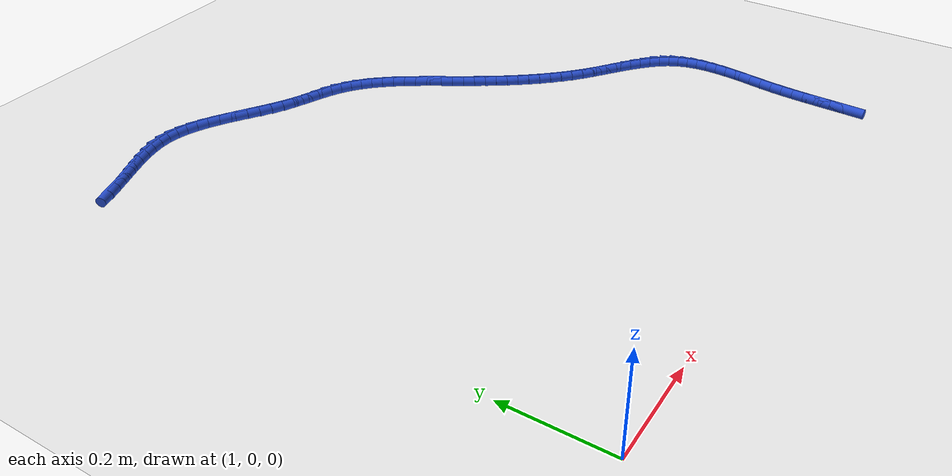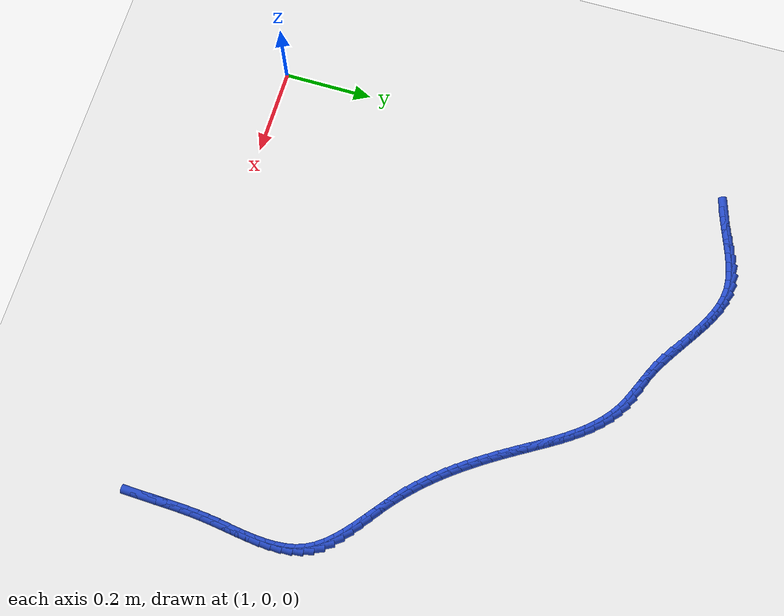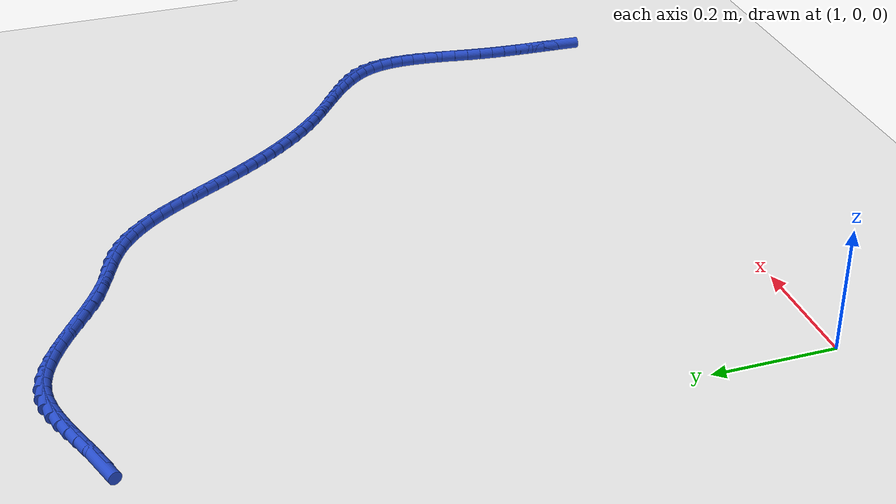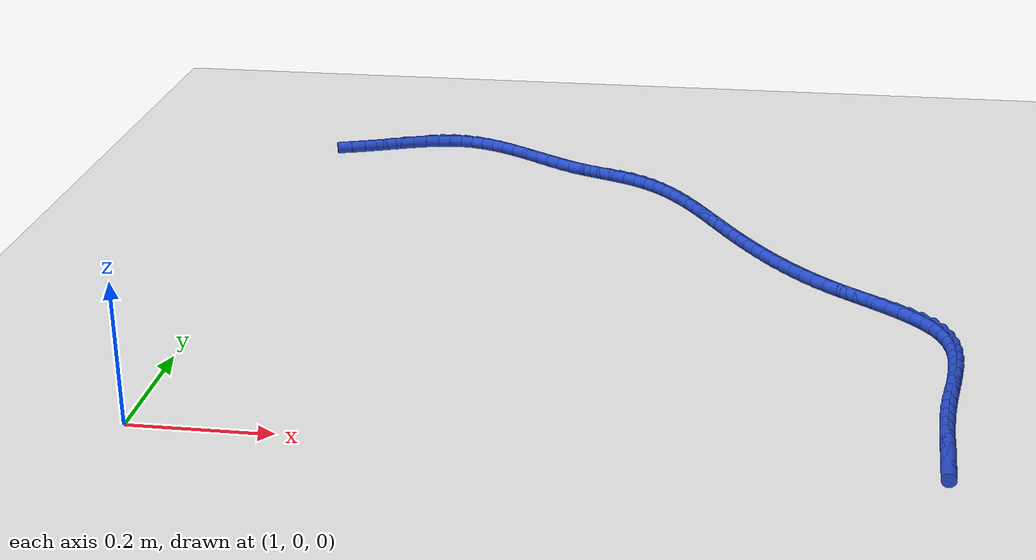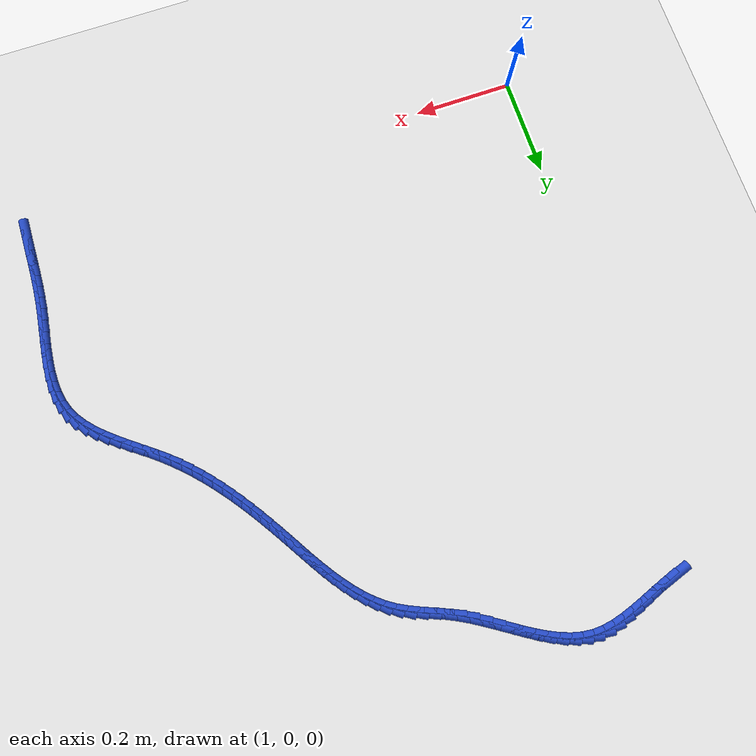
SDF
<sdf version="1.6">
 <world name="default">
  <model name="ground_plane">
   <static>1</static>
   <link name="link">
    <collision name="collision">
     <geometry><plane><normal>0 0 1</normal><size>100 100</size></plane></geometry>
     <surface><friction><ode><mu>100</mu><mu2>50</mu2></ode></friction></surface>
    </collision>
    <visual name="visual">
     <cast_shadows>0</cast_shadows>
     <geometry><plane><normal>0 0 1</normal><size>100 100</size></plane></geometry>
     <material>
      <script><uri>file://media/materials/scripts/gazebo.material</uri><name>Gazebo/WhiteGlow</name></script>
     </material>
    </visual>
   </link>
  </model>
  <model name="line">
   <link name="link_72">
    <pose>1.0673930704174264 1.0480091468862467 0.01 0 1.57 0.32543432662351807</pose>
    <collision name="collision">
     <geometry><cylinder><radius>0.01</radius><length>0.08</length></cylinder></geometry>
    </collision>
    <visual name="visual">
     <material>
      <script><name>Gazebo/Blue</name><uri>file://media/materials/scripts/gazebo.material</uri></script>
     </material>
     <geometry><cylinder><radius>0.01</radius><length>0.08</length></cylinder></geometry>
    </visual>
   </link>
   <link name="link_73">
    <pose>1.090062836324641 1.0556586391920324 0.01 0 1.57 0.3547111861317352</pose>
    <collision name="collision">
     <geometry><cylinder><radius>0.01</radius><length>0.08</length></cylinder></geometry>
    </collision>
    <visual name="visual">
     <material>
      <script><name>Gazebo/Blue</name><uri>file://media/materials/scripts/gazebo.material</uri></script>
     </material>
     <geometry><cylinder><radius>0.01</radius><length>0.08</length></cylinder></geometry>
    </visual>
   </link>
   <link name="link_74">
    <pose>1.112594905208778 1.064003991690307 0.01 0 1.57 0.36232805442717286</pose>
    <collision name="collision">
     <geometry><cylinder><radius>0.01</radius><length>0.08</length></cylinder></geometry>
    </collision>
    <visual name="visual">
     <material>
      <script><name>Gazebo/Blue</name><uri>file://media/materials/scripts/gazebo.material</uri></script>
     </material>
     <geometry><cylinder><radius>0.01</radius><length>0.08</length></cylinder></geometry>
    </visual>
   </link>
   <link name="link_75">
    <pose>1.1349659699733838 1.0724840363730466 0.01 0 1.57 0.3481999768852015</pose>
    <collision name="collision">
     <geometry><cylinder><radius>0.01</radius><length>0.08</length></cylinder></geometry>
    </collision>
    <visual name="visual">
     <material>
      <script><name>Gazebo/Blue</name><uri>file://media/materials/scripts/gazebo.material</uri></script>
     </material>
     <geometry><cylinder><radius>0.01</radius><length>0.08</length></cylinder></geometry>
    </visual>
   </link>
   <link name="link_76">
    <pose>1.1571527235220058 1.0805376052322297 0.01 0 1.57 0.31104788766767644</pose>
    <collision name="collision">
     <geometry><cylinder><radius>0.01</radius><length>0.08</length></cylinder></geometry>
    </collision>
    <visual name="visual">
     <material>
      <script><name>Gazebo/Blue</name><uri>file://media/materials/scripts/gazebo.material</uri></script>
     </material>
     <geometry><cylinder><radius>0.01</radius><length>0.08</length></cylinder></geometry>
    </visual>
   </link>
   <link name="link_77">
    <pose>1.1791318587581918 1.0876035302598335 0.01 0 1.57 0.24844036251018556</pose>
    <collision name="collision">
     <geometry><cylinder><radius>0.01</radius><length>0.08</length></cylinder></geometry>
    </collision>
    <visual name="visual">
     <material>
      <script><name>Gazebo/Blue</name><uri>file://media/materials/scripts/gazebo.material</uri></script>
     </material>
     <geometry><cylinder><radius>0.01</radius><length>0.08</length></cylinder></geometry>
    </visual>
   </link>
   <link name="link_78">
    <pose>1.2008800685854892 1.0931206434478347 0.01 0 1.57 0.15720769936185053</pose>
    <collision name="collision">
     <geometry><cylinder><radius>0.01</radius><length>0.08</length></cylinder></geometry>
    </collision>
    <visual name="visual">
     <material>
      <script><name>Gazebo/Blue</name><uri>file://media/materials/scripts/gazebo.material</uri></script>
     </material>
     <geometry><cylinder><radius>0.01</radius><length>0.08</length></cylinder></geometry>
    </visual>
   </link>
   <link name="link_79">
    <pose>1.2223740459074453 1.0965277767882111 0.01 0 1.57 0.034675495022608346</pose>
    <collision name="collision">
     <geometry><cylinder><radius>0.01</radius><length>0.08</length></cylinder></geometry>
    </collision>
    <visual name="visual">
     <material>
      <script><name>Gazebo/Blue</name><uri>file://media/materials/scripts/gazebo.material</uri></script>
     </material>
     <geometry><cylinder><radius>0.01</radius><length>0.08</length></cylinder></geometry>
    </visual>
   </link>
   <link name="link_80">
    <pose>1.2435904836276075 1.0972637622729402 0.01 0 1.57 -0.11167362612965273</pose>
    <collision name="collision">
     <geometry><cylinder><radius>0.01</radius><length>0.08</length></cylinder></geometry>
    </collision>
    <visual name="visual">
     <material>
      <script><name>Gazebo/Blue</name><uri>file://media/materials/scripts/gazebo.material</uri></script>
     </material>
     <geometry><cylinder><radius>0.01</radius><length>0.08</length></cylinder></geometry>
    </visual>
   </link>
   <link name="link_81">
    <pose>1.2645185084058563 1.0949168897895283 0.01 0 1.57 -0.245567502443348</pose>
    <collision name="collision">
     <geometry><cylinder><radius>0.01</radius><length>0.08</length></cylinder></geometry>
    </collision>
    <visual name="visual">
     <material>
      <script><name>Gazebo/Blue</name><uri>file://media/materials/scripts/gazebo.material</uri></script>
     </material>
     <geometry><cylinder><radius>0.01</radius><length>0.08</length></cylinder></geometry>
    </visual>
   </link>
   <link name="link_82">
    <pose>1.2852019572009896 1.0897330852544183 0.01 0 1.57 -0.3548010673460312</pose>
    <collision name="collision">
     <geometry><cylinder><radius>0.01</radius><length>0.08</length></cylinder></geometry>
    </collision>
    <visual name="visual">
     <material>
      <script><name>Gazebo/Blue</name><uri>file://media/materials/scripts/gazebo.material</uri></script>
     </material>
     <geometry><cylinder><radius>0.01</radius><length>0.08</length></cylinder></geometry>
    </visual>
   </link>
   <link name="link_83">
    <pose>1.3056997103226204 1.0821391006750902 0.01 0 1.57 -0.4394841724316454</pose>
    <collision name="collision">
     <geometry><cylinder><radius>0.01</radius><length>0.08</length></cylinder></geometry>
    </collision>
    <visual name="visual">
     <material>
      <script><name>Gazebo/Blue</name><uri>file://media/materials/scripts/gazebo.material</uri></script>
     </material>
     <geometry><cylinder><radius>0.01</radius><length>0.08</length></cylinder></geometry>
    </visual>
   </link>
   <link name="link_84">
    <pose>1.3260706485192881 1.0725616933350557 0.01 0 1.57 -0.5016103924878325</pose>
    <collision name="collision">
     <geometry><cylinder><radius>0.01</radius><length>0.08</length></cylinder></geometry>
    </collision>
    <visual name="visual">
     <material>
      <script><name>Gazebo/Blue</name><uri>file://media/materials/scripts/gazebo.material</uri></script>
     </material>
     <geometry><cylinder><radius>0.01</radius><length>0.08</length></cylinder></geometry>
    </visual>
   </link>
   <link name="link_85">
    <pose>1.3463736525395318 1.061427620517826 0.01 0 1.57 -0.5435877806002308</pose>
    <collision name="collision">
     <geometry><cylinder><radius>0.01</radius><length>0.08</length></cylinder></geometry>
    </collision>
    <visual name="visual">
     <material>
      <script><name>Gazebo/Blue</name><uri>file://media/materials/scripts/gazebo.material</uri></script>
     </material>
     <geometry><cylinder><radius>0.01</radius><length>0.08</length></cylinder></geometry>
    </visual>
   </link>
   <link name="link_86">
    <pose>1.3666676031318905 1.0491636395069126 0.01 0 1.57 -0.5674667937651484</pose>
    <collision name="collision">
     <geometry><cylinder><radius>0.01</radius><length>0.08</length></cylinder></geometry>
    </collision>
    <visual name="visual">
     <material>
      <script><name>Gazebo/Blue</name><uri>file://media/materials/scripts/gazebo.material</uri></script>
     </material>
     <geometry><cylinder><radius>0.01</radius><length>0.08</length></cylinder></geometry>
    </visual>
   </link>
   <link name="link_87">
    <pose>1.3870113810449038 1.0361965075858264 0.01 0 1.57 -0.5746343762718018</pose>
    <collision name="collision">
     <geometry><cylinder><radius>0.01</radius><length>0.08</length></cylinder></geometry>
    </collision>
    <visual name="visual">
     <material>
      <script><name>Gazebo/Blue</name><uri>file://media/materials/scripts/gazebo.material</uri></script>
     </material>
     <geometry><cylinder><radius>0.01</radius><length>0.08</length></cylinder></geometry>
    </visual>
   </link>
   <link name="link_88">
    <pose>1.4074638670271098 1.0229529820380792 0.01 0 1.57 -0.565737790495652</pose>
    <collision name="collision">
     <geometry><cylinder><radius>0.01</radius><length>0.08</length></cylinder></geometry>
    </collision>
    <visual name="visual">
     <material>
      <script><name>Gazebo/Blue</name><uri>file://media/materials/scripts/gazebo.material</uri></script>
     </material>
     <geometry><cylinder><radius>0.01</radius><length>0.08</length></cylinder></geometry>
    </visual>
   </link>
   <link name="link_89">
    <pose>1.4280839418270486 1.0098598201471822 0.01 0 1.57 -0.540705657776783</pose>
    <collision name="collision">
     <geometry><cylinder><radius>0.01</radius><length>0.08</length></cylinder></geometry>
    </collision>
    <visual name="visual">
     <material>
      <script><name>Gazebo/Blue</name><uri>file://media/materials/scripts/gazebo.material</uri></script>
     </material>
     <geometry><cylinder><radius>0.01</radius><length>0.08</length></cylinder></geometry>
    </visual>
   </link>
   <link name="link_90">
    <pose>1.4489304861932584 0.9973437791966466 0.01 0 1.57 -0.49882411593835035</pose>
    <collision name="collision">
     <geometry><cylinder><radius>0.01</radius><length>0.08</length></cylinder></geometry>
    </collision>
    <visual name="visual">
     <material>
      <script><name>Gazebo/Blue</name><uri>file://media/materials/scripts/gazebo.material</uri></script>
     </material>
     <geometry><cylinder><radius>0.01</radius><length>0.08</length></cylinder></geometry>
    </visual>
   </link>
   <link name="link_91">
    <pose>1.4700623808742792 0.9858316164699842 0.01 0 1.57 -0.44201856968181163</pose>
    <collision name="collision">
     <geometry><cylinder><radius>0.01</radius><length>0.08</length></cylinder></geometry>
    </collision>
    <visual name="visual">
     <material>
      <script><name>Gazebo/Blue</name><uri>file://media/materials/scripts/gazebo.material</uri></script>
     </material>
     <geometry><cylinder><radius>0.01</radius><length>0.08</length></cylinder></geometry>
    </visual>
   </link>
   <link name="link_92">
    <pose>1.4915137196436687 0.9756797954903617 0.01 0 1.57 -0.4003996006535737</pose>
    <collision name="collision">
     <geometry><cylinder><radius>0.01</radius><length>0.08</length></cylinder></geometry>
    </collision>
    <visual name="visual">
     <material>
      <script><name>Gazebo/Blue</name><uri>file://media/materials/scripts/gazebo.material</uri></script>
     </material>
     <geometry><cylinder><radius>0.01</radius><length>0.08</length></cylinder></geometry>
    </visual>
   </link>
   <link name="link_93">
    <pose>1.513074912012298 0.9665537118642417 0.01 0 1.57 -0.392503543899371</pose>
    <collision name="collision">
     <geometry><cylinder><radius>0.01</radius><length>0.08</length></cylinder></geometry>
    </collision>
    <visual name="visual">
     <material>
      <script><name>Gazebo/Blue</name><uri>file://media/materials/scripts/gazebo.material</uri></script>
     </material>
     <geometry><cylinder><radius>0.01</radius><length>0.08</length></cylinder></geometry>
    </visual>
   </link>
   <link name="link_94">
    <pose>1.5343979757992368 0.9577262940888565 0.01 0 1.57 -0.4200198182887845</pose>
    <collision name="collision">
     <geometry><cylinder><radius>0.01</radius><length>0.08</length></cylinder></geometry>
    </collision>
    <visual name="visual">
     <material>
      <script><name>Gazebo/Blue</name><uri>file://media/materials/scripts/gazebo.material</uri></script>
     </material>
     <geometry><cylinder><radius>0.01</radius><length>0.08</length></cylinder></geometry>
    </visual>
   </link>
   <link name="link_95">
    <pose>1.5551333375356848 0.9484659579039042 0.01 0 1.57 -0.4846675081146641</pose>
    <collision name="collision">
     <geometry><cylinder><radius>0.01</radius><length>0.08</length></cylinder></geometry>
    </collision>
    <visual name="visual">
     <material>
      <script><name>Gazebo/Blue</name><uri>file://media/materials/scripts/gazebo.material</uri></script>
     </material>
     <geometry><cylinder><radius>0.01</radius><length>0.08</length></cylinder></geometry>
    </visual>
   </link>
   <link name="link_96">
    <pose>1.5749314237528436 0.938041119049084 0.01 0 1.57 -0.5818476916212935</pose>
    <collision name="collision">
     <geometry><cylinder><radius>0.01</radius><length>0.08</length></cylinder></geometry>
    </collision>
    <visual name="visual">
     <material>
      <script><name>Gazebo/Blue</name><uri>file://media/materials/scripts/gazebo.material</uri></script>
     </material>
     <geometry><cylinder><radius>0.01</radius><length>0.08</length></cylinder></geometry>
    </visual>
   </link>
   <link name="link_97">
    <pose>1.593497232180481 0.9258282989767901 0.01 0 1.57 -0.678939298950797</pose>
    <collision name="collision">
     <geometry><cylinder><radius>0.01</radius><length>0.08</length></cylinder></geometry>
    </collision>
    <visual name="visual">
     <material>
      <script><name>Gazebo/Blue</name><uri>file://media/materials/scripts/gazebo.material</uri></script>
     </material>
     <geometry><cylinder><radius>0.01</radius><length>0.08</length></cylinder></geometry>
    </visual>
   </link>
   <link name="link_98">
    <pose>1.6108498829974944 0.9118262966801031 0.01 0 1.57 -0.7633986078631358</pose>
    <collision name="collision">
     <geometry><cylinder><radius>0.01</radius><length>0.08</length></cylinder></geometry>
    </collision>
    <visual name="visual">
     <material>
      <script><name>Gazebo/Blue</name><uri>file://media/materials/scripts/gazebo.material</uri></script>
     </material>
     <geometry><cylinder><radius>0.01</radius><length>0.08</length></cylinder></geometry>
    </visual>
   </link>
   <link name="link_99">
    <pose>1.6271206640578688 0.8962561156624503 0.01 0 1.57 -0.8348883837063878</pose>
    <collision name="collision">
     <geometry><cylinder><radius>0.01</radius><length>0.08</length></cylinder></geometry>
    </collision>
    <visual name="visual">
     <material>
      <script><name>Gazebo/Blue</name><uri>file://media/materials/scripts/gazebo.material</uri></script>
     </material>
     <geometry><cylinder><radius>0.01</radius><length>0.08</length></cylinder></geometry>
    </visual>
   </link>
   <link name="link_100">
    <pose>1.6424410028676744 0.8793390360784702 0.01 0 1.57 -0.8937896274585614</pose>
    <collision name="collision">
     <geometry><cylinder><radius>0.01</radius><length>0.08</length></cylinder></geometry>
    </collision>
    <visual name="visual">
     <material>
      <script><name>Gazebo/Blue</name><uri>file://media/materials/scripts/gazebo.material</uri></script>
     </material>
     <geometry><cylinder><radius>0.01</radius><length>0.08</length></cylinder></geometry>
    </visual>
   </link>
   <link name="link_101">
    <pose>1.6569423269329793 0.8612963380828006 0.01 0 1.57 -0.9408248041765619</pose>
    <collision name="collision">
     <geometry><cylinder><radius>0.01</radius><length>0.08</length></cylinder></geometry>
    </collision>
    <visual name="visual">
     <material>
      <script><name>Gazebo/Blue</name><uri>file://media/materials/scripts/gazebo.material</uri></script>
     </material>
     <geometry><cylinder><radius>0.01</radius><length>0.08</length></cylinder></geometry>
    </visual>
   </link>
   <link name="link_102">
    <pose>1.6707560637598542 0.8423493018300793 0.01 0 1.57 -0.9767925079063312</pose>
    <collision name="collision">
     <geometry><cylinder><radius>0.01</radius><length>0.08</length></cylinder></geometry>
    </collision>
    <visual name="visual">
     <material>
      <script><name>Gazebo/Blue</name><uri>file://media/materials/scripts/gazebo.material</uri></script>
     </material>
     <geometry><cylinder><radius>0.01</radius><length>0.08</length></cylinder></geometry>
    </visual>
   </link>
   <link name="link_103">
    <pose>1.6840136408543684 0.8227192074749446 0.01 0 1.57 -1.0024000583743449</pose>
    <collision name="collision">
     <geometry><cylinder><radius>0.01</radius><length>0.08</length></cylinder></geometry>
    </collision>
    <visual name="visual">
     <material>
      <script><name>Gazebo/Blue</name><uri>file://media/materials/scripts/gazebo.material</uri></script>
     </material>
     <geometry><cylinder><radius>0.01</radius><length>0.08</length></cylinder></geometry>
    </visual>
   </link>
   <link name="link_104">
    <pose>1.6968464857225907 0.8026273351720346 0.01 0 1.57 -1.018167606235206</pose>
    <collision name="collision">
     <geometry><cylinder><radius>0.01</radius><length>0.08</length></cylinder></geometry>
    </collision>
    <visual name="visual">
     <material>
      <script><name>Gazebo/Blue</name><uri>file://media/materials/scripts/gazebo.material</uri></script>
     </material>
     <geometry><cylinder><radius>0.01</radius><length>0.08</length></cylinder></geometry>
    </visual>
   </link>
   <link name="link_105">
    <pose>1.7093860258705917 0.7822949650759873 0.01 0 1.57 -1.0243754161124363</pose>
    <collision name="collision">
     <geometry><cylinder><radius>0.01</radius><length>0.08</length></cylinder></geometry>
    </collision>
    <visual name="visual">
     <material>
      <script><name>Gazebo/Blue</name><uri>file://media/materials/scripts/gazebo.material</uri></script>
     </material>
     <geometry><cylinder><radius>0.01</radius><length>0.08</length></cylinder></geometry>
    </visual>
   </link>
   <link name="link_106">
    <pose>1.7217636888044403 0.761943377341441 0.01 0 1.57 -1.0211305450666222</pose>
    <collision name="collision">
     <geometry><cylinder><radius>0.01</radius><length>0.08</length></cylinder></geometry>
    </collision>
    <visual name="visual">
     <material>
      <script><name>Gazebo/Blue</name><uri>file://media/materials/scripts/gazebo.material</uri></script>
     </material>
     <geometry><cylinder><radius>0.01</radius><length>0.08</length></cylinder></geometry>
    </visual>
   </link>
   <link name="link_107">
    <pose>1.7341100485475058 0.7417908411601778 0.01 0 1.57 -1.0112404992976256</pose>
    <collision name="collision">
     <geometry><cylinder><radius>0.01</radius><length>0.08</length></cylinder></geometry>
    </collision>
    <visual name="visual">
     <material>
      <script><name>Gazebo/Blue</name><uri>file://media/materials/scripts/gazebo.material</uri></script>
     </material>
     <geometry><cylinder><radius>0.01</radius><length>0.08</length></cylinder></geometry>
    </visual>
   </link>
   <link name="link_108">
    <pose>1.746529241465105 0.7219623575108218 0.01 0 1.57 -0.9981155440251708</pose>
    <collision name="collision">
     <geometry><cylinder><radius>0.01</radius><length>0.08</length></cylinder></geometry>
    </collision>
    <visual name="visual">
     <material>
      <script><name>Gazebo/Blue</name><uri>file://media/materials/scripts/gazebo.material</uri></script>
     </material>
     <geometry><cylinder><radius>0.01</radius><length>0.08</length></cylinder></geometry>
    </visual>
   </link>
   <link name="link_109">
    <pose>1.759094519388561 0.7024739712271761 0.01 0 1.57 -0.9819289153230926</pose>
    <collision name="collision">
     <geometry><cylinder><radius>0.01</radius><length>0.08</length></cylinder></geometry>
    </collision>
    <visual name="visual">
     <material>
      <script><name>Gazebo/Blue</name><uri>file://media/materials/scripts/gazebo.material</uri></script>
     </material>
     <geometry><cylinder><radius>0.01</radius><length>0.08</length></cylinder></geometry>
    </visual>
   </link>
   <link name="link_110">
    <pose>1.7718773845473812 0.6833355548022472 0.01 0 1.57 -0.9626858234633338</pose>
    <collision name="collision">
     <geometry><cylinder><radius>0.01</radius><length>0.08</length></cylinder></geometry>
    </collision>
    <visual name="visual">
     <material>
      <script><name>Gazebo/Blue</name><uri>file://media/materials/scripts/gazebo.material</uri></script>
     </material>
     <geometry><cylinder><radius>0.01</radius><length>0.08</length></cylinder></geometry>
    </visual>
   </link>
   <link name="link_111">
    <pose>1.7849493391710705 0.66455698072904 0.01 0 1.57 -0.9404284224523554</pose>
    <collision name="collision">
     <geometry><cylinder><radius>0.01</radius><length>0.08</length></cylinder></geometry>
    </collision>
    <visual name="visual">
     <material>
      <script><name>Gazebo/Blue</name><uri>file://media/materials/scripts/gazebo.material</uri></script>
     </material>
     <geometry><cylinder><radius>0.01</radius><length>0.08</length></cylinder></geometry>
    </visual>
   </link>
   <link name="link_112">
    <pose>1.7983818854891345 0.6461481215005602 0.01 0 1.57 -0.9152411616210674</pose>
    <collision name="collision">
     <geometry><cylinder><radius>0.01</radius><length>0.08</length></cylinder></geometry>
    </collision>
    <visual name="visual">
     <material>
      <script><name>Gazebo/Blue</name><uri>file://media/materials/scripts/gazebo.material</uri></script>
     </material>
     <geometry><cylinder><radius>0.01</radius><length>0.08</length></cylinder></geometry>
    </visual>
   </link>
   <link name="link_113">
    <pose>1.8122465257310785 0.6281188496098131 0.01 0 1.57 -0.8872554738515079</pose>
    <collision name="collision">
     <geometry><cylinder><radius>0.01</radius><length>0.08</length></cylinder></geometry>
    </collision>
    <visual name="visual">
     <material>
      <script><name>Gazebo/Blue</name><uri>file://media/materials/scripts/gazebo.material</uri></script>
     </material>
     <geometry><cylinder><radius>0.01</radius><length>0.08</length></cylinder></geometry>
    </visual>
   </link>
   <link name="link_114">
    <pose>1.8266147621264088 0.6104790375498046 0.01 0 1.57 -0.8566531074305533</pose>
    <collision name="collision">
     <geometry><cylinder><radius>0.01</radius><length>0.08</length></cylinder></geometry>
    </collision>
    <visual name="visual">
     <material>
      <script><name>Gazebo/Blue</name><uri>file://media/materials/scripts/gazebo.material</uri></script>
     </material>
     <geometry><cylinder><radius>0.01</radius><length>0.08</length></cylinder></geometry>
    </visual>
   </link>
   <link name="link_115">
    <pose>1.841558096904629 0.5932385578135393 0.01 0 1.57 -0.823667353981905</pose>
    <collision name="collision">
     <geometry><cylinder><radius>0.01</radius><length>0.08</length></cylinder></geometry>
    </collision>
    <visual name="visual">
     <material>
      <script><name>Gazebo/Blue</name><uri>file://media/materials/scripts/gazebo.material</uri></script>
     </material>
     <geometry><cylinder><radius>0.01</radius><length>0.08</length></cylinder></geometry>
    </visual>
   </link>
   <link name="link_116">
    <pose>1.8571480322952472 0.5764072828940235 0.01 0 1.57 -0.7885814847496743</pose>
    <collision name="collision">
     <geometry><cylinder><radius>0.01</radius><length>0.08</length></cylinder></geometry>
    </collision>
    <visual name="visual">
     <material>
      <script><name>Gazebo/Blue</name><uri>file://media/materials/scripts/gazebo.material</uri></script>
     </material>
     <geometry><cylinder><radius>0.01</radius><length>0.08</length></cylinder></geometry>
    </visual>
   </link>
   <link name="link_117">
    <pose>1.8734560705277672 0.5599950852842625 0.01 0 1.57 -0.7517239121057208</pose>
    <collision name="collision">
     <geometry><cylinder><radius>0.01</radius><length>0.08</length></cylinder></geometry>
    </collision>
    <visual name="visual">
     <material>
      <script><name>Gazebo/Blue</name><uri>file://media/materials/scripts/gazebo.material</uri></script>
     </material>
     <geometry><cylinder><radius>0.01</radius><length>0.08</length></cylinder></geometry>
    </visual>
   </link>
   <link name="link_118">
    <pose>1.8905537138316952 0.5440118374772611 0.01 0 1.57 -0.713459943261283</pose>
    <collision name="collision">
     <geometry><cylinder><radius>0.01</radius><length>0.08</length></cylinder></geometry>
    </collision>
    <visual name="visual">
     <material>
      <script><name>Gazebo/Blue</name><uri>file://media/materials/scripts/gazebo.material</uri></script>
     </material>
     <geometry><cylinder><radius>0.01</radius><length>0.08</length></cylinder></geometry>
    </visual>
   </link>
   <link name="link_119">
    <pose>1.9085124644365365 0.5284674119660253 0.01 0 1.57 -0.6769124657425603</pose>
    <collision name="collision">
     <geometry><cylinder><radius>0.01</radius><length>0.08</length></cylinder></geometry>
    </collision>
    <visual name="visual">
     <material>
      <script><name>Gazebo/Blue</name><uri>file://media/materials/scripts/gazebo.material</uri></script>
     </material>
     <geometry><cylinder><radius>0.01</radius><length>0.08</length></cylinder></geometry>
    </visual>
   </link>
   <link name="link_120">
    <pose>1.9273329836074038 0.5133438543950101 0.01 0 1.57 -0.6553852333295683</pose>
    <collision name="collision">
     <geometry><cylinder><radius>0.01</radius><length>0.08</length></cylinder></geometry>
    </collision>
    <visual name="visual">
     <material>
      <script><name>Gazebo/Blue</name><uri>file://media/materials/scripts/gazebo.material</uri></script>
     </material>
     <geometry><cylinder><radius>0.01</radius><length>0.08</length></cylinder></geometry>
    </visual>
   </link>
   <link name="link_121">
    <pose>1.9466626409720695 0.4984844348715152 0.01 0 1.57 -0.6521315850545579</pose>
    <collision name="collision">
     <geometry><cylinder><radius>0.01</radius><length>0.08</length></cylinder></geometry>
    </collision>
    <visual name="visual">
     <material>
      <script><name>Gazebo/Blue</name><uri>file://media/materials/scripts/gazebo.material</uri></script>
     </material>
     <geometry><cylinder><radius>0.01</radius><length>0.08</length></cylinder></geometry>
    </visual>
   </link>
   <link name="link_122">
    <pose>1.9660388904758304 0.48368924781945166 0.01 0 1.57 -0.6670615973451779</pose>
    <collision name="collision">
     <geometry><cylinder><radius>0.01</radius><length>0.08</length></cylinder></geometry>
    </collision>
    <visual name="visual">
     <material>
      <script><name>Gazebo/Blue</name><uri>file://media/materials/scripts/gazebo.material</uri></script>
     </material>
     <geometry><cylinder><radius>0.01</radius><length>0.08</length></cylinder></geometry>
    </visual>
   </link>
   <link name="link_123">
    <pose>1.9849991510167806 0.4687583738959333 0.01 0 1.57 -0.7011791137791128</pose>
    <collision name="collision">
     <geometry><cylinder><radius>0.01</radius><length>0.08</length></cylinder></geometry>
    </collision>
    <visual name="visual">
     <material>
      <script><name>Gazebo/Blue</name><uri>file://media/materials/scripts/gazebo.material</uri></script>
     </material>
     <geometry><cylinder><radius>0.01</radius><length>0.08</length></cylinder></geometry>
    </visual>
   </link>
   <link name="link_124">
    <pose>2.0030808414930124 0.4534918937580741 0.01 0 1.57 -0.7565659521050458</pose>
    <collision name="collision">
     <geometry><cylinder><radius>0.01</radius><length>0.08</length></cylinder></geometry>
    </collision>
    <visual name="visual">
     <material>
      <script><name>Gazebo/Blue</name><uri>file://media/materials/scripts/gazebo.material</uri></script>
     </material>
     <geometry><cylinder><radius>0.01</radius><length>0.08</length></cylinder></geometry>
    </visual>
   </link>
   <link name="link_125">
    <pose>2.0198213808026217 0.4376898880629874 0.01 0 1.57 -0.8362100299446125</pose>
    <collision name="collision">
     <geometry><cylinder><radius>0.01</radius><length>0.08</length></cylinder></geometry>
    </collision>
    <visual name="visual">
     <material>
      <script><name>Gazebo/Blue</name><uri>file://media/materials/scripts/gazebo.material</uri></script>
     </material>
     <geometry><cylinder><radius>0.01</radius><length>0.08</length></cylinder></geometry>
    </visual>
   </link>
   <link name="link_126">
    <pose>2.034758187843702 0.42115243746778747 0.01 0 1.57 -0.9433867458409276</pose>
    <collision name="collision">
     <geometry><cylinder><radius>0.01</radius><length>0.08</length></cylinder></geometry>
    </collision>
    <visual name="visual">
     <material>
      <script><name>Gazebo/Blue</name><uri>file://media/materials/scripts/gazebo.material</uri></script>
     </material>
     <geometry><cylinder><radius>0.01</radius><length>0.08</length></cylinder></geometry>
    </visual>
   </link>
   <link name="link_127">
    <pose>2.047428681514346 0.40367962262958795 0.01 0 1.57 -1.0801151481346534</pose>
    <collision name="collision">
     <geometry><cylinder><radius>0.01</radius><length>0.08</length></cylinder></geometry>
    </collision>
    <visual name="visual">
     <material>
      <script><name>Gazebo/Blue</name><uri>file://media/materials/scripts/gazebo.material</uri></script>
     </material>
     <geometry><cylinder><radius>0.01</radius><length>0.08</length></cylinder></geometry>
    </visual>
   </link>
   <link name="link_128">
    <pose>2.0573703031630903 0.38507153364185454 0.01 0 1.57 -1.2356968015577856</pose>
    <collision name="collision">
     <geometry><cylinder><radius>0.01</radius><length>0.08</length></cylinder></geometry>
    </collision>
    <visual name="visual">
     <material>
      <script><name>Gazebo/Blue</name><uri>file://media/materials/scripts/gazebo.material</uri></script>
     </material>
     <geometry><cylinder><radius>0.01</radius><length>0.08</length></cylinder></geometry>
    </visual>
   </link>
   <link name="link_129">
    <pose>2.0642903425614954 0.3651996511508889 0.01 0 1.57 -1.3743065796573422</pose>
    <collision name="collision">
     <geometry><cylinder><radius>0.01</radius><length>0.08</length></cylinder></geometry>
    </collision>
    <visual name="visual">
     <material>
      <script><name>Gazebo/Blue</name><uri>file://media/materials/scripts/gazebo.material</uri></script>
     </material>
     <geometry><cylinder><radius>0.01</radius><length>0.08</length></cylinder></geometry>
    </visual>
   </link>
   <link name="link_130">
    <pose>2.0684747390004974 0.34417867330452184 0.01 0 1.57 -1.4865640751053955</pose>
    <collision name="collision">
     <geometry><cylinder><radius>0.01</radius><length>0.08</length></cylinder></geometry>
    </collision>
    <visual name="visual">
     <material>
      <script><name>Gazebo/Blue</name><uri>file://media/materials/scripts/gazebo.material</uri></script>
     </material>
     <geometry><cylinder><radius>0.01</radius><length>0.08</length></cylinder></geometry>
    </visual>
   </link>
   <link name="link_131">
    <pose>2.07033254982532 0.32217504713234046 0.01 0 1.57 1.5681794223551566</pose>
    <collision name="collision">
     <geometry><cylinder><radius>0.01</radius><length>0.08</length></cylinder></geometry>
    </collision>
    <visual name="visual">
     <material>
      <script><name>Gazebo/Blue</name><uri>file://media/materials/scripts/gazebo.material</uri></script>
     </material>
     <geometry><cylinder><radius>0.01</radius><length>0.08</length></cylinder></geometry>
    </visual>
   </link>
   <link name="link_132">
    <pose>2.070272832381185 0.2993552196639319 0.01 0 1.57 1.5040775917843774</pose>
    <collision name="collision">
     <geometry><cylinder><radius>0.01</radius><length>0.08</length></cylinder></geometry>
    </collision>
    <visual name="visual">
     <material>
      <script><name>Gazebo/Blue</name><uri>file://media/materials/scripts/gazebo.material</uri></script>
     </material>
     <geometry><cylinder><radius>0.01</radius><length>0.08</length></cylinder></geometry>
    </visual>
   </link>
   <link name="link_133">
    <pose>2.068704644013318 0.27588563792888443 0.01 0 1.57 1.459884671844211</pose>
    <collision name="collision">
     <geometry><cylinder><radius>0.01</radius><length>0.08</length></cylinder></geometry>
    </collision>
    <visual name="visual">
     <material>
      <script><name>Gazebo/Blue</name><uri>file://media/materials/scripts/gazebo.material</uri></script>
     </material>
     <geometry><cylinder><radius>0.01</radius><length>0.08</length></cylinder></geometry>
    </visual>
   </link>
   <link name="link_134">
    <pose>2.066037042066941 0.25193274895678425 0.01 0 1.57 1.4333093946513642</pose>
    <collision name="collision">
     <geometry><cylinder><radius>0.01</radius><length>0.08</length></cylinder></geometry>
    </collision>
    <visual name="visual">
     <material>
      <script><name>Gazebo/Blue</name><uri>file://media/materials/scripts/gazebo.material</uri></script>
     </material>
     <geometry><cylinder><radius>0.01</radius><length>0.08</length></cylinder></geometry>
    </visual>
   </link>
   <link name="link_135">
    <pose>2.0626790838872777 0.2276629997772192 0.01 0 1.57 1.4228583630930256</pose>
    <collision name="collision">
     <geometry><cylinder><radius>0.01</radius><length>0.08</length></cylinder></geometry>
    </collision>
    <visual name="visual">
     <material>
      <script><name>Gazebo/Blue</name><uri>file://media/materials/scripts/gazebo.material</uri></script>
     </material>
     <geometry><cylinder><radius>0.01</radius><length>0.08</length></cylinder></geometry>
    </visual>
   </link>
   <link name="link_136">
    <pose>2.0590398268195518 0.20324283741977678 0.01 0 1.57 1.427887678148669</pose>
    <collision name="collision">
     <geometry><cylinder><radius>0.01</radius><length>0.08</length></cylinder></geometry>
    </collision>
    <visual name="visual">
     <material>
      <script><name>Gazebo/Blue</name><uri>file://media/materials/scripts/gazebo.material</uri></script>
     </material>
     <geometry><cylinder><radius>0.01</radius><length>0.08</length></cylinder></geometry>
    </visual>
   </link>
   <link name="link_137">
    <pose>2.0555283282089873 0.17883870891404435 0.01 0 1.57 1.4483381037485135</pose>
    <collision name="collision">
     <geometry><cylinder><radius>0.01</radius><length>0.08</length></cylinder></geometry>
    </collision>
    <visual name="visual">
     <material>
      <script><name>Gazebo/Blue</name><uri>file://media/materials/scripts/gazebo.material</uri></script>
     </material>
     <geometry><cylinder><radius>0.01</radius><length>0.08</length></cylinder></geometry>
    </visual>
   </link>
   <link name="link_138">
    <pose>2.0525470025484576 0.15461487161491191 0.01 0 1.57 1.4757323948332597</pose>
    <collision name="collision">
     <geometry><cylinder><radius>0.01</radius><length>0.08</length></cylinder></geometry>
    </collision>
    <visual name="visual">
     <material>
      <script><name>Gazebo/Blue</name><uri>file://media/materials/scripts/gazebo.material</uri></script>
     </material>
     <geometry><cylinder><radius>0.01</radius><length>0.08</length></cylinder></geometry>
    </visual>
   </link>
   <link name="link_139">
    <pose>2.0502626756919486 0.13065792610356627 0.01 0 1.57 1.4986001160810904</pose>
    <collision name="collision">
     <geometry><cylinder><radius>0.01</radius><length>0.08</length></cylinder></geometry>
    </collision>
    <visual name="visual">
     <material>
      <script><name>Gazebo/Blue</name><uri>file://media/materials/scripts/gazebo.material</uri></script>
     </material>
     <geometry><cylinder><radius>0.01</radius><length>0.08</length></cylinder></geometry>
    </visual>
   </link>
   <link name="link_140">
    <pose>2.048548631039407 0.10695771294749845 0.01 0 1.57 1.5159109806705053</pose>
    <collision name="collision">
     <geometry><cylinder><radius>0.01</radius><length>0.08</length></cylinder></geometry>
    </collision>
    <visual name="visual">
     <material>
      <script><name>Gazebo/Blue</name><uri>file://media/materials/scripts/gazebo.material</uri></script>
     </material>
     <geometry><cylinder><radius>0.01</radius><length>0.08</length></cylinder></geometry>
    </visual>
   </link>
   <link name="link_141">
    <pose>2.0472597423372187 0.08349800436426856 0.01 0 1.57 1.5274045895284498</pose>
    <collision name="collision">
     <geometry><cylinder><radius>0.01</radius><length>0.08</length></cylinder></geometry>
    </collision>
    <visual name="visual">
     <material>
      <script><name>Gazebo/Blue</name><uri>file://media/materials/scripts/gazebo.material</uri></script>
     </material>
     <geometry><cylinder><radius>0.01</radius><length>0.08</length></cylinder></geometry>
    </visual>
   </link>
   <link name="link_142">
    <pose>2.0462508833317736 0.06026257257143794 0.01 0 1.57 1.5328616508765214</pose>
    <collision name="collision">
     <geometry><cylinder><radius>0.01</radius><length>0.08</length></cylinder></geometry>
    </collision>
    <visual name="visual">
     <material>
      <script><name>Gazebo/Blue</name><uri>file://media/materials/scripts/gazebo.material</uri></script>
     </material>
     <geometry><cylinder><radius>0.01</radius><length>0.08</length></cylinder></geometry>
    </visual>
   </link>
   <link name="link_143">
    <pose>2.045376927769459 0.03723518978656758 0.01 0 1.57 1.5320962966964906</pose>
    <collision name="collision">
     <geometry><cylinder><radius>0.01</radius><length>0.08</length></cylinder></geometry>
    </collision>
    <visual name="visual">
     <material>
      <script><name>Gazebo/Blue</name><uri>file://media/materials/scripts/gazebo.material</uri></script>
     </material>
     <geometry><cylinder><radius>0.01</radius><length>0.08</length></cylinder></geometry>
    </visual>
   </link>
   <link name="link_144">
    <pose>2.0444927493966634 0.014399628227218398 0.01 0 1.57 1.5249534061377463</pose>
    <collision name="collision">
     <geometry><cylinder><radius>0.01</radius><length>0.08</length></cylinder></geometry>
    </collision>
    <visual name="visual">
     <material>
      <script><name>Gazebo/Blue</name><uri>file://media/materials/scripts/gazebo.material</uri></script>
     </material>
     <geometry><cylinder><radius>0.01</radius><length>0.08</length></cylinder></geometry>
    </visual>
   </link>
  </model>
 </world>
</sdf>
